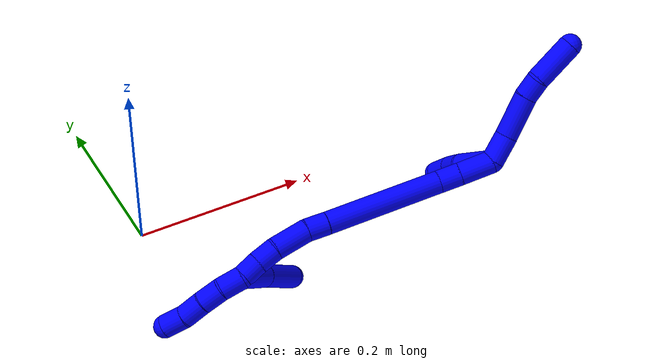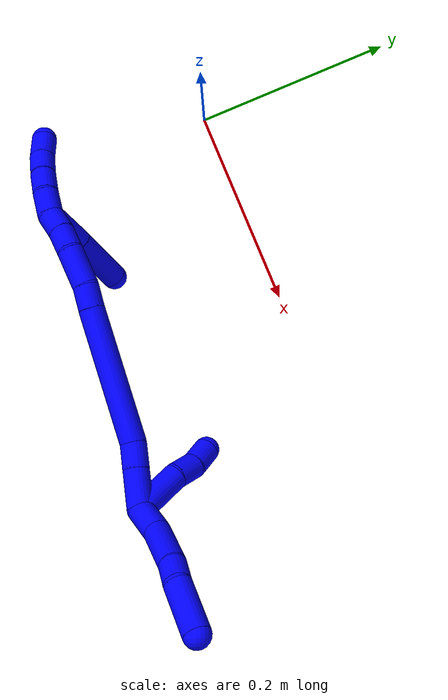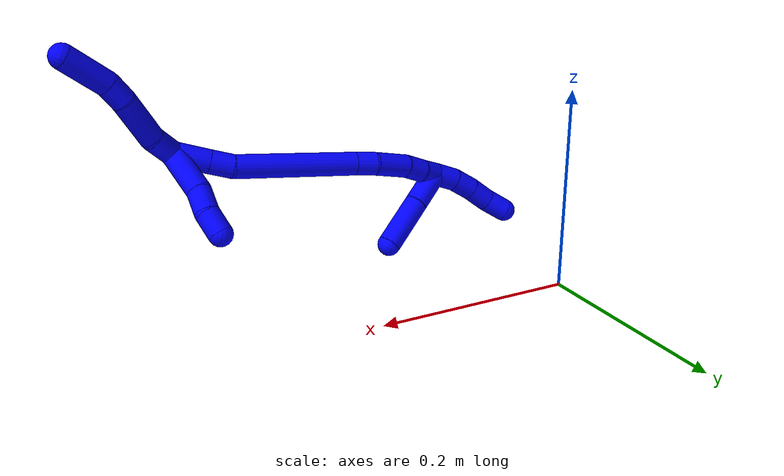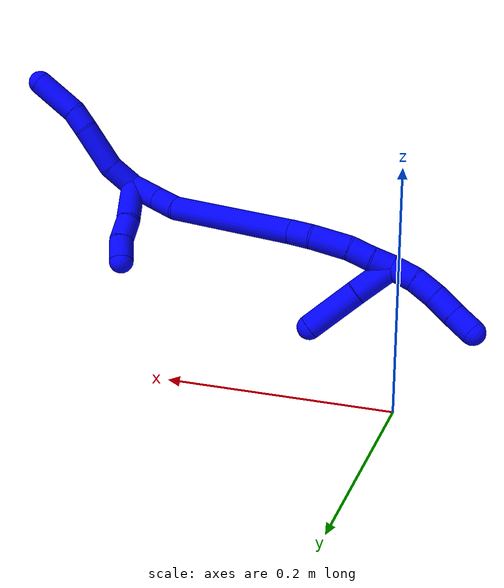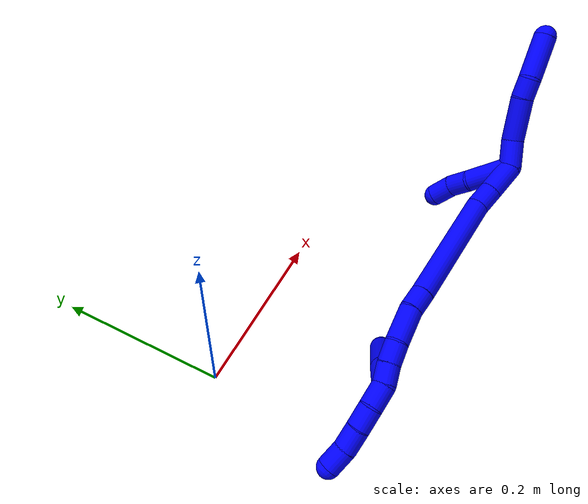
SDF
<sdf version="1.7">
 <world name="default">
  <model name="1">
   <static>0</static>
   <link name="1">
    <collision name="collision-cylinder-e_1_2_8">
     <pose>0.00552 0.008896 0.011631 -0.652964 0.360482 -0.123242</pose>
     <geometry><cylinder><radius>0.0125</radius><length>0.031298</length></cylinder></geometry>
     <surface>
      <friction><ode><mu>1.16</mu><mu2>1.16</mu2><slip1>0</slip1><slip2>0</slip2></ode></friction>
      <contact><ode><kp>1e+06</kp><kd>1</kd><max_vel>0</max_vel><min_depth>0.001</min_depth></ode></contact>
     </surface>
    </collision>
    <visual name="visual-cylinder-e_1_2_8">
     <pose>0.00552 0.008896 0.011631 -0.652964 0.360482 -0.123242</pose>
     <geometry><cylinder><radius>0.0125</radius><length>0.031298</length></cylinder></geometry>
     <material><ambient>0 0 1 1</ambient></material>
    </visual>
    <collision name="collision-cylinder-e_2_8_9">
     <pose>0.013737 0.035 0.039932 -0.80126 0.112116 -0.047526</pose>
     <geometry><cylinder><radius>0.0125</radius><length>0.048217</length></cylinder></geometry>
     <surface>
      <friction><ode><mu>1.16</mu><mu2>1.16</mu2><slip1>0</slip1><slip2>0</slip2></ode></friction>
      <contact><ode><kp>1e+06</kp><kd>1</kd><max_vel>0</max_vel><min_depth>0.001</min_depth></ode></contact>
     </surface>
    </collision>
    <visual name="visual-cylinder-e_2_8_9">
     <pose>0.013737 0.035 0.039932 -0.80126 0.112116 -0.047526</pose>
     <geometry><cylinder><radius>0.0125</radius><length>0.048217</length></cylinder></geometry>
     <material><ambient>0 0 1 1</ambient></material>
    </visual>
    <collision name="collision-cylinder-e_3_9_10">
     <pose>0.016838 0.058824 0.065361 -0.646944 0.036785 -0.012333</pose>
     <geometry><cylinder><radius>0.0125</radius><length>0.021971</length></cylinder></geometry>
     <surface>
      <friction><ode><mu>1.16</mu><mu2>1.16</mu2><slip1>0</slip1><slip2>0</slip2></ode></friction>
      <contact><ode><kp>1e+06</kp><kd>1</kd><max_vel>0</max_vel><min_depth>0.001</min_depth></ode></contact>
     </surface>
    </collision>
    <visual name="visual-cylinder-e_3_9_10">
     <pose>0.016838 0.058824 0.065361 -0.646944 0.036785 -0.012333</pose>
     <geometry><cylinder><radius>0.0125</radius><length>0.021971</length></cylinder></geometry>
     <material><ambient>0 0 1 1</ambient></material>
    </visual>
    <collision name="collision-cylinder-e_4_10_6">
     <pose>0.022238 0.075545 0.0956 -0.439681 0.207446 -0.046513</pose>
     <geometry><cylinder><radius>0.0125</radius><length>0.048513</length></cylinder></geometry>
     <surface>
      <friction><ode><mu>1.16</mu><mu2>1.16</mu2><slip1>0</slip1><slip2>0</slip2></ode></friction>
      <contact><ode><kp>1e+06</kp><kd>1</kd><max_vel>0</max_vel><min_depth>0.001</min_depth></ode></contact>
     </surface>
    </collision>
    <visual name="visual-cylinder-e_4_10_6">
     <pose>0.022238 0.075545 0.0956 -0.439681 0.207446 -0.046513</pose>
     <geometry><cylinder><radius>0.0125</radius><length>0.048513</length></cylinder></geometry>
     <material><ambient>0 0 1 1</ambient></material>
    </visual>
    <collision name="collision-cylinder-e_1_2_11">
     <pose>0.018045 -0.005121 -0.016479 2.8403 0.80775 2.45902</pose>
     <geometry><cylinder><radius>0.0125</radius><length>0.049936</length></cylinder></geometry>
     <surface>
      <friction><ode><mu>1.16</mu><mu2>1.16</mu2><slip1>0</slip1><slip2>0</slip2></ode></friction>
      <contact><ode><kp>1e+06</kp><kd>1</kd><max_vel>0</max_vel><min_depth>0.001</min_depth></ode></contact>
     </surface>
    </collision>
    <visual name="visual-cylinder-e_1_2_11">
     <pose>0.018045 -0.005121 -0.016479 2.8403 0.80775 2.45902</pose>
     <geometry><cylinder><radius>0.0125</radius><length>0.049936</length></cylinder></geometry>
     <material><ambient>0 0 1 1</ambient></material>
    </visual>
    <collision name="collision-cylinder-e_2_11_12">
     <pose>0.046071 -0.014602 -0.039133 2.52673 0.922546 2.00469</pose>
     <geometry><cylinder><radius>0.0125</radius><length>0.025039</length></cylinder></geometry>
     <surface>
      <friction><ode><mu>1.16</mu><mu2>1.16</mu2><slip1>0</slip1><slip2>0</slip2></ode></friction>
      <contact><ode><kp>1e+06</kp><kd>1</kd><max_vel>0</max_vel><min_depth>0.001</min_depth></ode></contact>
     </surface>
    </collision>
    <visual name="visual-cylinder-e_2_11_12">
     <pose>0.046071 -0.014602 -0.039133 2.52673 0.922546 2.00469</pose>
     <geometry><cylinder><radius>0.0125</radius><length>0.025039</length></cylinder></geometry>
     <material><ambient>0 0 1 1</ambient></material>
    </visual>
    <collision name="collision-cylinder-e_3_12_5">
     <pose>0.063845 -0.023451 -0.054005 2.66516 0.67255 1.92729</pose>
     <geometry><cylinder><radius>0.0125</radius><length>0.025024</length></cylinder></geometry>
     <surface>
      <friction><ode><mu>1.16</mu><mu2>1.16</mu2><slip1>0</slip1><slip2>0</slip2></ode></friction>
      <contact><ode><kp>1e+06</kp><kd>1</kd><max_vel>0</max_vel><min_depth>0.001</min_depth></ode></contact>
     </surface>
    </collision>
    <visual name="visual-cylinder-e_3_12_5">
     <pose>0.063845 -0.023451 -0.054005 2.66516 0.67255 1.92729</pose>
     <geometry><cylinder><radius>0.0125</radius><length>0.025024</length></cylinder></geometry>
     <material><ambient>0 0 1 1</ambient></material>
    </visual>
    <collision name="collision-cylinder-e_1_2_13">
     <pose>-0.00162 0.000156 -0.018289 -3.13304 -0.088319 2.94857</pose>
     <geometry><cylinder><radius>0.0125</radius><length>0.036723</length></cylinder></geometry>
     <surface>
      <friction><ode><mu>1.16</mu><mu2>1.16</mu2><slip1>0</slip1><slip2>0</slip2></ode></friction>
      <contact><ode><kp>1e+06</kp><kd>1</kd><max_vel>0</max_vel><min_depth>0.001</min_depth></ode></contact>
     </surface>
    </collision>
    <visual name="visual-cylinder-e_1_2_13">
     <pose>-0.00162 0.000156 -0.018289 -3.13304 -0.088319 2.94857</pose>
     <geometry><cylinder><radius>0.0125</radius><length>0.036723</length></cylinder></geometry>
     <material><ambient>0 0 1 1</ambient></material>
    </visual>
    <collision name="collision-cylinder-e_2_13_14">
     <pose>-0.004312 0.0006 -0.048919 -3.1183 -0.086736 2.61711</pose>
     <geometry><cylinder><radius>0.0125</radius><length>0.024782</length></cylinder></geometry>
     <surface>
      <friction><ode><mu>1.16</mu><mu2>1.16</mu2><slip1>0</slip1><slip2>0</slip2></ode></friction>
      <contact><ode><kp>1e+06</kp><kd>1</kd><max_vel>0</max_vel><min_depth>0.001</min_depth></ode></contact>
     </surface>
    </collision>
    <visual name="visual-cylinder-e_2_13_14">
     <pose>-0.004312 0.0006 -0.048919 -3.1183 -0.086736 2.61711</pose>
     <geometry><cylinder><radius>0.0125</radius><length>0.024782</length></cylinder></geometry>
     <material><ambient>0 0 1 1</ambient></material>
    </visual>
    <collision name="collision-cylinder-e_3_14_15">
     <pose>-0.025537 0.010279 -0.123118 -2.99093 -0.311587 2.2457</pose>
     <geometry><cylinder><radius>0.0125</radius><length>0.131463</length></cylinder></geometry>
     <surface>
      <friction><ode><mu>1.16</mu><mu2>1.16</mu2><slip1>0</slip1><slip2>0</slip2></ode></friction>
      <contact><ode><kp>1e+06</kp><kd>1</kd><max_vel>0</max_vel><min_depth>0.001</min_depth></ode></contact>
     </surface>
    </collision>
    <visual name="visual-cylinder-e_3_14_15">
     <pose>-0.025537 0.010279 -0.123118 -2.99093 -0.311587 2.2457</pose>
     <geometry><cylinder><radius>0.0125</radius><length>0.131463</length></cylinder></geometry>
     <material><ambient>0 0 1 1</ambient></material>
    </visual>
    <collision name="collision-cylinder-e_4_15_16">
     <pose>-0.048694 0.021284 -0.196024 -2.99647 -0.262979 2.13647</pose>
     <geometry><cylinder><radius>0.0125</radius><length>0.023127</length></cylinder></geometry>
     <surface>
      <friction><ode><mu>1.16</mu><mu2>1.16</mu2><slip1>0</slip1><slip2>0</slip2></ode></friction>
      <contact><ode><kp>1e+06</kp><kd>1</kd><max_vel>0</max_vel><min_depth>0.001</min_depth></ode></contact>
     </surface>
    </collision>
    <visual name="visual-cylinder-e_4_15_16">
     <pose>-0.048694 0.021284 -0.196024 -2.99647 -0.262979 2.13647</pose>
     <geometry><cylinder><radius>0.0125</radius><length>0.023127</length></cylinder></geometry>
     <material><ambient>0 0 1 1</ambient></material>
    </visual>
    <collision name="collision-cylinder-e_5_16_17">
     <pose>-0.05902 0.022557 -0.225115 3.12263 -0.385333 -3.04445</pose>
     <geometry><cylinder><radius>0.0125</radius><length>0.038947</length></cylinder></geometry>
     <surface>
      <friction><ode><mu>1.16</mu><mu2>1.16</mu2><slip1>0</slip1><slip2>0</slip2></ode></friction>
      <contact><ode><kp>1e+06</kp><kd>1</kd><max_vel>0</max_vel><min_depth>0.001</min_depth></ode></contact>
     </surface>
    </collision>
    <visual name="visual-cylinder-e_5_16_17">
     <pose>-0.05902 0.022557 -0.225115 3.12263 -0.385333 -3.04445</pose>
     <geometry><cylinder><radius>0.0125</radius><length>0.038947</length></cylinder></geometry>
     <material><ambient>0 0 1 1</ambient></material>
    </visual>
    <collision name="collision-cylinder-e_6_17_18">
     <pose>-0.070234 0.019977 -0.253871 2.93571 -0.341873 -2.063</pose>
     <geometry><cylinder><radius>0.0125</radius><length>0.023235</length></cylinder></geometry>
     <surface>
      <friction><ode><mu>1.16</mu><mu2>1.16</mu2><slip1>0</slip1><slip2>0</slip2></ode></friction>
      <contact><ode><kp>1e+06</kp><kd>1</kd><max_vel>0</max_vel><min_depth>0.001</min_depth></ode></contact>
     </surface>
    </collision>
    <visual name="visual-cylinder-e_6_17_18">
     <pose>-0.070234 0.019977 -0.253871 2.93571 -0.341873 -2.063</pose>
     <geometry><cylinder><radius>0.0125</radius><length>0.023235</length></cylinder></geometry>
     <material><ambient>0 0 1 1</ambient></material>
    </visual>
    <collision name="collision-cylinder-e_7_18_1">
     <pose>-0.079026 0.015331 -0.273976 2.89048 -0.467764 -2.16718</pose>
     <geometry><cylinder><radius>0.0125</radius><length>0.021723</length></cylinder></geometry>
     <surface>
      <friction><ode><mu>1.16</mu><mu2>1.16</mu2><slip1>0</slip1><slip2>0</slip2></ode></friction>
      <contact><ode><kp>1e+06</kp><kd>1</kd><max_vel>0</max_vel><min_depth>0.001</min_depth></ode></contact>
     </surface>
    </collision>
    <visual name="visual-cylinder-e_7_18_1">
     <pose>-0.079026 0.015331 -0.273976 2.89048 -0.467764 -2.16718</pose>
     <geometry><cylinder><radius>0.0125</radius><length>0.021723</length></cylinder></geometry>
     <material><ambient>0 0 1 1</ambient></material>
    </visual>
    <collision name="collision-cylinder-e_1_1_19">
     <pose>-0.068269 0.000717 -0.275588 1.00332 0.824601 0.470863</pose>
     <geometry><cylinder><radius>0.0125</radius><length>0.042641</length></cylinder></geometry>
     <surface>
      <friction><ode><mu>1.16</mu><mu2>1.16</mu2><slip1>0</slip1><slip2>0</slip2></ode></friction>
      <contact><ode><kp>1e+06</kp><kd>1</kd><max_vel>0</max_vel><min_depth>0.001</min_depth></ode></contact>
     </surface>
    </collision>
    <visual name="visual-cylinder-e_1_1_19">
     <pose>-0.068269 0.000717 -0.275588 1.00332 0.824601 0.470863</pose>
     <geometry><cylinder><radius>0.0125</radius><length>0.042641</length></cylinder></geometry>
     <material><ambient>0 0 1 1</ambient></material>
    </visual>
    <collision name="collision-cylinder-e_2_19_4">
     <pose>-0.032353 -0.028892 -0.257361 1.03018 0.784443 0.46002</pose>
     <geometry><cylinder><radius>0.0125</radius><length>0.057359</length></cylinder></geometry>
     <surface>
      <friction><ode><mu>1.16</mu><mu2>1.16</mu2><slip1>0</slip1><slip2>0</slip2></ode></friction>
      <contact><ode><kp>1e+06</kp><kd>1</kd><max_vel>0</max_vel><min_depth>0.001</min_depth></ode></contact>
     </surface>
    </collision>
    <visual name="visual-cylinder-e_2_19_4">
     <pose>-0.032353 -0.028892 -0.257361 1.03018 0.784443 0.46002</pose>
     <geometry><cylinder><radius>0.0125</radius><length>0.057359</length></cylinder></geometry>
     <material><ambient>0 0 1 1</ambient></material>
    </visual>
    <collision name="collision-cylinder-e_1_1_20">
     <pose>-0.086213 0.011591 -0.29579 3.03493 -0.181175 -2.07896</pose>
     <geometry><cylinder><radius>0.0125</radius><length>0.025404</length></cylinder></geometry>
     <surface>
      <friction><ode><mu>1.16</mu><mu2>1.16</mu2><slip1>0</slip1><slip2>0</slip2></ode></friction>
      <contact><ode><kp>1e+06</kp><kd>1</kd><max_vel>0</max_vel><min_depth>0.001</min_depth></ode></contact>
     </surface>
    </collision>
    <visual name="visual-cylinder-e_1_1_20">
     <pose>-0.086213 0.011591 -0.29579 3.03493 -0.181175 -2.07896</pose>
     <geometry><cylinder><radius>0.0125</radius><length>0.025404</length></cylinder></geometry>
     <material><ambient>0 0 1 1</ambient></material>
    </visual>
    <collision name="collision-cylinder-e_2_20_21">
     <pose>-0.08945 0.006953 -0.319935 2.86655 -0.077708 -0.547669</pose>
     <geometry><cylinder><radius>0.0125</radius><length>0.024433</length></cylinder></geometry>
     <surface>
      <friction><ode><mu>1.16</mu><mu2>1.16</mu2><slip1>0</slip1><slip2>0</slip2></ode></friction>
      <contact><ode><kp>1e+06</kp><kd>1</kd><max_vel>0</max_vel><min_depth>0.001</min_depth></ode></contact>
     </surface>
    </collision>
    <visual name="visual-cylinder-e_2_20_21">
     <pose>-0.08945 0.006953 -0.319935 2.86655 -0.077708 -0.547669</pose>
     <geometry><cylinder><radius>0.0125</radius><length>0.024433</length></cylinder></geometry>
     <material><ambient>0 0 1 1</ambient></material>
    </visual>
    <collision name="collision-cylinder-e_3_21_22">
     <pose>-0.090494 -0.000739 -0.343508 2.78724 -0.007553 -0.042177</pose>
     <geometry><cylinder><radius>0.0125</radius><length>0.025273</length></cylinder></geometry>
     <surface>
      <friction><ode><mu>1.16</mu><mu2>1.16</mu2><slip1>0</slip1><slip2>0</slip2></ode></friction>
      <contact><ode><kp>1e+06</kp><kd>1</kd><max_vel>0</max_vel><min_depth>0.001</min_depth></ode></contact>
     </surface>
    </collision>
    <visual name="visual-cylinder-e_3_21_22">
     <pose>-0.090494 -0.000739 -0.343508 2.78724 -0.007553 -0.042177</pose>
     <geometry><cylinder><radius>0.0125</radius><length>0.025273</length></cylinder></geometry>
     <material><ambient>0 0 1 1</ambient></material>
    </visual>
    <collision name="collision-cylinder-e_4_22_3">
     <pose>-0.089363 -0.007573 -0.367499 2.94253 0.098638 0.918109</pose>
     <geometry><cylinder><radius>0.0125</radius><length>0.02489</length></cylinder></geometry>
     <surface>
      <friction><ode><mu>1.16</mu><mu2>1.16</mu2><slip1>0</slip1><slip2>0</slip2></ode></friction>
      <contact><ode><kp>1e+06</kp><kd>1</kd><max_vel>0</max_vel><min_depth>0.001</min_depth></ode></contact>
     </surface>
    </collision>
    <visual name="visual-cylinder-e_4_22_3">
     <pose>-0.089363 -0.007573 -0.367499 2.94253 0.098638 0.918109</pose>
     <geometry><cylinder><radius>0.0125</radius><length>0.02489</length></cylinder></geometry>
     <material><ambient>0 0 1 1</ambient></material>
    </visual>
    <collision name="collision-sphere-3">
     <pose>-0.088138 -0.010022 -0.379639 0 -0 0</pose>
     <geometry><sphere><radius>0.0125</radius></sphere></geometry>
     <surface>
      <friction><ode><mu>1.16</mu><mu2>1.16</mu2><slip1>0</slip1><slip2>0</slip2></ode></friction>
      <contact><ode><kp>1e+06</kp><kd>1</kd><max_vel>0</max_vel><min_depth>0.001</min_depth></ode></contact>
     </surface>
    </collision>
    <visual name="visual-sphere-3">
     <pose>-0.088138 -0.010022 -0.379639 0 -0 0</pose>
     <geometry><sphere><radius>0.0125</radius></sphere></geometry>
     <material><ambient>0 0 1 1</ambient></material>
    </visual>
    <collision name="collision-sphere-22">
     <pose>-0.090589 -0.005123 -0.355359 0 -0 0</pose>
     <geometry><sphere><radius>0.0125</radius></sphere></geometry>
     <surface>
      <friction><ode><mu>1.16</mu><mu2>1.16</mu2><slip1>0</slip1><slip2>0</slip2></ode></friction>
      <contact><ode><kp>1e+06</kp><kd>1</kd><max_vel>0</max_vel><min_depth>0.001</min_depth></ode></contact>
     </surface>
    </collision>
    <visual name="visual-sphere-22">
     <pose>-0.090589 -0.005123 -0.355359 0 -0 0</pose>
     <geometry><sphere><radius>0.0125</radius></sphere></geometry>
     <material><ambient>0 0 1 1</ambient></material>
    </visual>
    <collision name="collision-sphere-21">
     <pose>-0.090398 0.003646 -0.331657 0 -0 0</pose>
     <geometry><sphere><radius>0.0125</radius></sphere></geometry>
     <surface>
      <friction><ode><mu>1.16</mu><mu2>1.16</mu2><slip1>0</slip1><slip2>0</slip2></ode></friction>
      <contact><ode><kp>1e+06</kp><kd>1</kd><max_vel>0</max_vel><min_depth>0.001</min_depth></ode></contact>
     </surface>
    </collision>
    <visual name="visual-sphere-21">
     <pose>-0.090398 0.003646 -0.331657 0 -0 0</pose>
     <geometry><sphere><radius>0.0125</radius></sphere></geometry>
     <material><ambient>0 0 1 1</ambient></material>
    </visual>
    <collision name="collision-sphere-20">
     <pose>-0.088501 0.010261 -0.308213 0 -0 0</pose>
     <geometry><sphere><radius>0.0125</radius></sphere></geometry>
     <surface>
      <friction><ode><mu>1.16</mu><mu2>1.16</mu2><slip1>0</slip1><slip2>0</slip2></ode></friction>
      <contact><ode><kp>1e+06</kp><kd>1</kd><max_vel>0</max_vel><min_depth>0.001</min_depth></ode></contact>
     </surface>
    </collision>
    <visual name="visual-sphere-20">
     <pose>-0.088501 0.010261 -0.308213 0 -0 0</pose>
     <geometry><sphere><radius>0.0125</radius></sphere></geometry>
     <material><ambient>0 0 1 1</ambient></material>
    </visual>
    <collision name="collision-sphere-4">
     <pose>-0.012093 -0.046296 -0.246914 0 -0 0</pose>
     <geometry><sphere><radius>0.0125</radius></sphere></geometry>
     <surface>
      <friction><ode><mu>1.16</mu><mu2>1.16</mu2><slip1>0</slip1><slip2>0</slip2></ode></friction>
      <contact><ode><kp>1e+06</kp><kd>1</kd><max_vel>0</max_vel><min_depth>0.001</min_depth></ode></contact>
     </surface>
    </collision>
    <visual name="visual-sphere-4">
     <pose>-0.012093 -0.046296 -0.246914 0 -0 0</pose>
     <geometry><sphere><radius>0.0125</radius></sphere></geometry>
     <material><ambient>0 0 1 1</ambient></material>
    </visual>
    <collision name="collision-sphere-11">
     <pose>0.036091 -0.010242 -0.032958 0 -0 0</pose>
     <geometry><sphere><radius>0.0125</radius></sphere></geometry>
     <surface>
      <friction><ode><mu>1.16</mu><mu2>1.16</mu2><slip1>0</slip1><slip2>0</slip2></ode></friction>
      <contact><ode><kp>1e+06</kp><kd>1</kd><max_vel>0</max_vel><min_depth>0.001</min_depth></ode></contact>
     </surface>
    </collision>
    <visual name="visual-sphere-11">
     <pose>0.036091 -0.010242 -0.032958 0 -0 0</pose>
     <geometry><sphere><radius>0.0125</radius></sphere></geometry>
     <material><ambient>0 0 1 1</ambient></material>
    </visual>
    <collision name="collision-sphere-6">
     <pose>0.027234 0.085648 0.117078 0 -0 0</pose>
     <geometry><sphere><radius>0.0125</radius></sphere></geometry>
     <surface>
      <friction><ode><mu>1.16</mu><mu2>1.16</mu2><slip1>0</slip1><slip2>0</slip2></ode></friction>
      <contact><ode><kp>1e+06</kp><kd>1</kd><max_vel>0</max_vel><min_depth>0.001</min_depth></ode></contact>
     </surface>
    </collision>
    <visual name="visual-sphere-6">
     <pose>0.027234 0.085648 0.117078 0 -0 0</pose>
     <geometry><sphere><radius>0.0125</radius></sphere></geometry>
     <material><ambient>0 0 1 1</ambient></material>
    </visual>
    <collision name="collision-sphere-10">
     <pose>0.017242 0.065441 0.074121 0 -0 0</pose>
     <geometry><sphere><radius>0.0125</radius></sphere></geometry>
     <surface>
      <friction><ode><mu>1.16</mu><mu2>1.16</mu2><slip1>0</slip1><slip2>0</slip2></ode></friction>
      <contact><ode><kp>1e+06</kp><kd>1</kd><max_vel>0</max_vel><min_depth>0.001</min_depth></ode></contact>
     </surface>
    </collision>
    <visual name="visual-sphere-10">
     <pose>0.017242 0.065441 0.074121 0 -0 0</pose>
     <geometry><sphere><radius>0.0125</radius></sphere></geometry>
     <material><ambient>0 0 1 1</ambient></material>
    </visual>
    <collision name="collision-sphere-9">
     <pose>0.016434 0.052207 0.056601 0 -0 0</pose>
     <geometry><sphere><radius>0.0125</radius></sphere></geometry>
     <surface>
      <friction><ode><mu>1.16</mu><mu2>1.16</mu2><slip1>0</slip1><slip2>0</slip2></ode></friction>
      <contact><ode><kp>1e+06</kp><kd>1</kd><max_vel>0</max_vel><min_depth>0.001</min_depth></ode></contact>
     </surface>
    </collision>
    <visual name="visual-sphere-9">
     <pose>0.016434 0.052207 0.056601 0 -0 0</pose>
     <geometry><sphere><radius>0.0125</radius></sphere></geometry>
     <material><ambient>0 0 1 1</ambient></material>
    </visual>
    <collision name="collision-sphere-2">
     <geometry><sphere><radius>0.0125</radius></sphere></geometry>
     <surface>
      <friction><ode><mu>1.16</mu><mu2>1.16</mu2><slip1>0</slip1><slip2>0</slip2></ode></friction>
      <contact><ode><kp>1e+06</kp><kd>1</kd><max_vel>0</max_vel><min_depth>0.001</min_depth></ode></contact>
     </surface>
    </collision>
    <visual name="visual-sphere-2">
     <geometry><sphere><radius>0.0125</radius></sphere></geometry>
     <material><ambient>0 0 1 1</ambient></material>
    </visual>
    <collision name="collision-sphere-19">
     <pose>-0.052614 -0.011488 -0.267808 0 -0 0</pose>
     <geometry><sphere><radius>0.0125</radius></sphere></geometry>
     <surface>
      <friction><ode><mu>1.16</mu><mu2>1.16</mu2><slip1>0</slip1><slip2>0</slip2></ode></friction>
      <contact><ode><kp>1e+06</kp><kd>1</kd><max_vel>0</max_vel><min_depth>0.001</min_depth></ode></contact>
     </surface>
    </collision>
    <visual name="visual-sphere-19">
     <pose>-0.052614 -0.011488 -0.267808 0 -0 0</pose>
     <geometry><sphere><radius>0.0125</radius></sphere></geometry>
     <material><ambient>0 0 1 1</ambient></material>
    </visual>
    <collision name="collision-sphere-8">
     <pose>0.01104 0.017793 0.023262 0 -0 0</pose>
     <geometry><sphere><radius>0.0125</radius></sphere></geometry>
     <surface>
      <friction><ode><mu>1.16</mu><mu2>1.16</mu2><slip1>0</slip1><slip2>0</slip2></ode></friction>
      <contact><ode><kp>1e+06</kp><kd>1</kd><max_vel>0</max_vel><min_depth>0.001</min_depth></ode></contact>
     </surface>
    </collision>
    <visual name="visual-sphere-8">
     <pose>0.01104 0.017793 0.023262 0 -0 0</pose>
     <geometry><sphere><radius>0.0125</radius></sphere></geometry>
     <material><ambient>0 0 1 1</ambient></material>
    </visual>
    <collision name="collision-sphere-12">
     <pose>0.056051 -0.018963 -0.045307 0 -0 0</pose>
     <geometry><sphere><radius>0.0125</radius></sphere></geometry>
     <surface>
      <friction><ode><mu>1.16</mu><mu2>1.16</mu2><slip1>0</slip1><slip2>0</slip2></ode></friction>
      <contact><ode><kp>1e+06</kp><kd>1</kd><max_vel>0</max_vel><min_depth>0.001</min_depth></ode></contact>
     </surface>
    </collision>
    <visual name="visual-sphere-12">
     <pose>0.056051 -0.018963 -0.045307 0 -0 0</pose>
     <geometry><sphere><radius>0.0125</radius></sphere></geometry>
     <material><ambient>0 0 1 1</ambient></material>
    </visual>
    <collision name="collision-sphere-5">
     <pose>0.07164 -0.02794 -0.062702 0 -0 0</pose>
     <geometry><sphere><radius>0.0125</radius></sphere></geometry>
     <surface>
      <friction><ode><mu>1.16</mu><mu2>1.16</mu2><slip1>0</slip1><slip2>0</slip2></ode></friction>
      <contact><ode><kp>1e+06</kp><kd>1</kd><max_vel>0</max_vel><min_depth>0.001</min_depth></ode></contact>
     </surface>
    </collision>
    <visual name="visual-sphere-5">
     <pose>0.07164 -0.02794 -0.062702 0 -0 0</pose>
     <geometry><sphere><radius>0.0125</radius></sphere></geometry>
     <material><ambient>0 0 1 1</ambient></material>
    </visual>
    <collision name="collision-sphere-13">
     <pose>-0.003239 0.000313 -0.036578 0 -0 0</pose>
     <geometry><sphere><radius>0.0125</radius></sphere></geometry>
     <surface>
      <friction><ode><mu>1.16</mu><mu2>1.16</mu2><slip1>0</slip1><slip2>0</slip2></ode></friction>
      <contact><ode><kp>1e+06</kp><kd>1</kd><max_vel>0</max_vel><min_depth>0.001</min_depth></ode></contact>
     </surface>
    </collision>
    <visual name="visual-sphere-13">
     <pose>-0.003239 0.000313 -0.036578 0 -0 0</pose>
     <geometry><sphere><radius>0.0125</radius></sphere></geometry>
     <material><ambient>0 0 1 1</ambient></material>
    </visual>
    <collision name="collision-sphere-14">
     <pose>-0.005386 0.000888 -0.06126 0 -0 0</pose>
     <geometry><sphere><radius>0.0125</radius></sphere></geometry>
     <surface>
      <friction><ode><mu>1.16</mu><mu2>1.16</mu2><slip1>0</slip1><slip2>0</slip2></ode></friction>
      <contact><ode><kp>1e+06</kp><kd>1</kd><max_vel>0</max_vel><min_depth>0.001</min_depth></ode></contact>
     </surface>
    </collision>
    <visual name="visual-sphere-14">
     <pose>-0.005386 0.000888 -0.06126 0 -0 0</pose>
     <geometry><sphere><radius>0.0125</radius></sphere></geometry>
     <material><ambient>0 0 1 1</ambient></material>
    </visual>
    <collision name="collision-sphere-15">
     <pose>-0.045688 0.01967 -0.184975 0 -0 0</pose>
     <geometry><sphere><radius>0.0125</radius></sphere></geometry>
     <surface>
      <friction><ode><mu>1.16</mu><mu2>1.16</mu2><slip1>0</slip1><slip2>0</slip2></ode></friction>
      <contact><ode><kp>1e+06</kp><kd>1</kd><max_vel>0</max_vel><min_depth>0.001</min_depth></ode></contact>
     </surface>
    </collision>
    <visual name="visual-sphere-15">
     <pose>-0.045688 0.01967 -0.184975 0 -0 0</pose>
     <geometry><sphere><radius>0.0125</radius></sphere></geometry>
     <material><ambient>0 0 1 1</ambient></material>
    </visual>
    <collision name="collision-sphere-16">
     <pose>-0.0517 0.022899 -0.207072 0 -0 0</pose>
     <geometry><sphere><radius>0.0125</radius></sphere></geometry>
     <surface>
      <friction><ode><mu>1.16</mu><mu2>1.16</mu2><slip1>0</slip1><slip2>0</slip2></ode></friction>
      <contact><ode><kp>1e+06</kp><kd>1</kd><max_vel>0</max_vel><min_depth>0.001</min_depth></ode></contact>
     </surface>
    </collision>
    <visual name="visual-sphere-16">
     <pose>-0.0517 0.022899 -0.207072 0 -0 0</pose>
     <geometry><sphere><radius>0.0125</radius></sphere></geometry>
     <material><ambient>0 0 1 1</ambient></material>
    </visual>
    <collision name="collision-sphere-17">
     <pose>-0.066339 0.022215 -0.243157 0 -0 0</pose>
     <geometry><sphere><radius>0.0125</radius></sphere></geometry>
     <surface>
      <friction><ode><mu>1.16</mu><mu2>1.16</mu2><slip1>0</slip1><slip2>0</slip2></ode></friction>
      <contact><ode><kp>1e+06</kp><kd>1</kd><max_vel>0</max_vel><min_depth>0.001</min_depth></ode></contact>
     </surface>
    </collision>
    <visual name="visual-sphere-17">
     <pose>-0.066339 0.022215 -0.243157 0 -0 0</pose>
     <geometry><sphere><radius>0.0125</radius></sphere></geometry>
     <material><ambient>0 0 1 1</ambient></material>
    </visual>
    <collision name="collision-sphere-18">
     <pose>-0.074129 0.01774 -0.264585 0 -0 0</pose>
     <geometry><sphere><radius>0.0125</radius></sphere></geometry>
     <surface>
      <friction><ode><mu>1.16</mu><mu2>1.16</mu2><slip1>0</slip1><slip2>0</slip2></ode></friction>
      <contact><ode><kp>1e+06</kp><kd>1</kd><max_vel>0</max_vel><min_depth>0.001</min_depth></ode></contact>
     </surface>
    </collision>
    <visual name="visual-sphere-18">
     <pose>-0.074129 0.01774 -0.264585 0 -0 0</pose>
     <geometry><sphere><radius>0.0125</radius></sphere></geometry>
     <material><ambient>0 0 1 1</ambient></material>
    </visual>
    <collision name="collision-sphere-1">
     <pose>-0.083924 0.012921 -0.283367 0 -0 0</pose>
     <geometry><sphere><radius>0.0125</radius></sphere></geometry>
     <surface>
      <friction><ode><mu>1.16</mu><mu2>1.16</mu2><slip1>0</slip1><slip2>0</slip2></ode></friction>
      <contact><ode><kp>1e+06</kp><kd>1</kd><max_vel>0</max_vel><min_depth>0.001</min_depth></ode></contact>
     </surface>
    </collision>
    <visual name="visual-sphere-1">
     <pose>-0.083924 0.012921 -0.283367 0 -0 0</pose>
     <geometry><sphere><radius>0.0125</radius></sphere></geometry>
     <material><ambient>0 0 1 1</ambient></material>
    </visual>
    <inertial>
     <pose>-0.024019 0.010514 -0.130246 0 -0 0</pose>
     <mass>0.75</mass>
     <inertia>
      <ixx>7.4e-05</ixx>
      <ixy>0</ixy>
      <ixz>0</ixz>
      <iyy>0.000353</iyy>
      <iyz>0</iyz>
      <izz>-1.5e-05</izz>
     </inertia>
    </inertial>
   </link>
   <pose>0.331203 -0.2001 0.129969 1.23194 0.258395 1.13646</pose>
  </model>
 </world>
</sdf>
